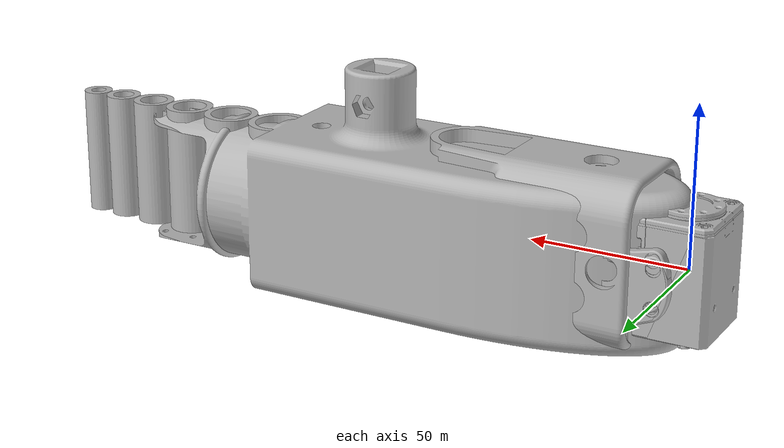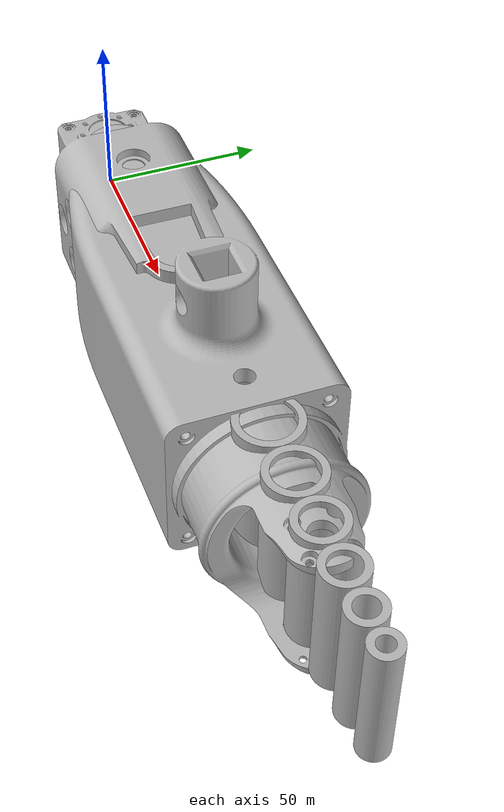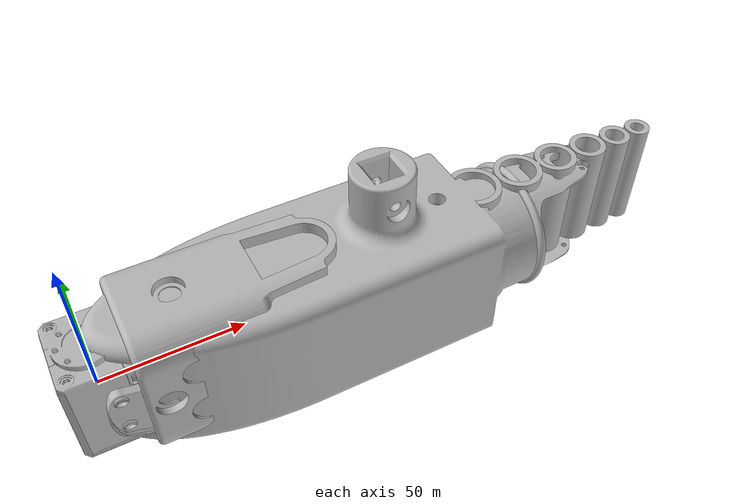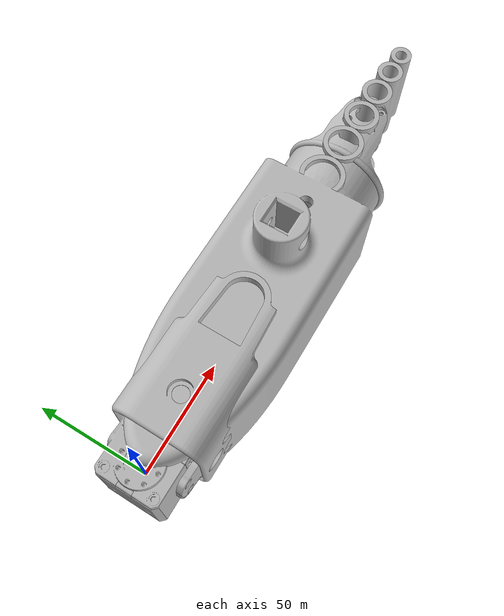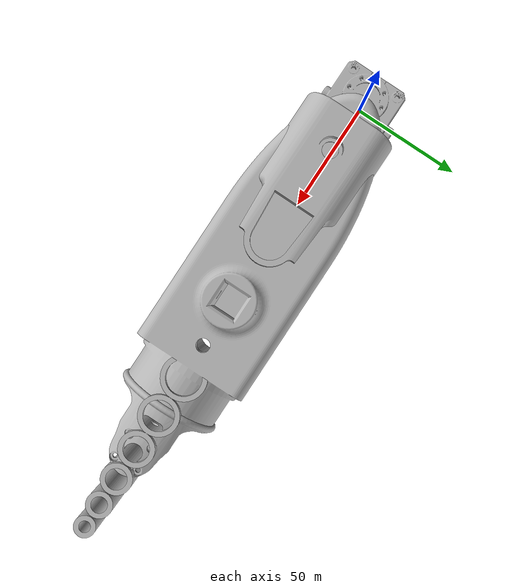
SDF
<?xml version="1.0" ?>
<sdf version="1.6">
	<world name="world">
		<model name="1guilla">
			<pose>0.0 0.0 0.0 0.0 0.0 0.0</pose>
			<link name="link0">
				<pose>0 0 0 0 0 0</pose>
				<inertial>
					<pose>0.0895944 0.000191419 0.00284499 0 0 0</pose>
					<mass>0.0980593</mass>
					<density>800.0</density>
					<inertia>
						<ixx>6.14036e-05</ixx>
						<ixy>9.24119e-08</ixy>
						<ixz>1.37203e-06</ixz>
						<iyy>0.000234707</iyy>
						<iyz>2.08172e-08</iyz>
						<izz>0.000227299</izz>
					</inertia>
				</inertial>
				<collision name="link0_collision">
					<pose>0.0 0.0 0.0 0.0 0.0 0.0</pose>
					<geometry>
						<mesh>
							<uri>meshes/link0_collision.stl</uri>
							<scale>1.0 1.0 1.0</scale>
						</mesh>
					</geometry>
				</collision>
				<visual name="link0_visual">
					<pose>0.0 0.0 0.0 0.0 0.0 0.0</pose>
					<geometry>
						<mesh>
							<uri>meshes/link0.obj</uri>
							<scale>1.0 1.0 1.0</scale>
						</mesh>
					</geometry>
				</visual>
			</link>
			<link name="link1">
				<pose>0.17701 0 0 0 0 0</pose>
				<inertial>
					<pose>0.0162396 0.000150087 -0.000959669 0 0 0</pose>
					<mass>0.0481571</mass>
					<density>800.0</density>
					<inertia>
						<ixx>1.07482e-05</ixx>
						<ixy>8.49192e-09</ixy>
						<ixz>-5.7129e-08</ixz>
						<iyy>1.86555e-05</iyy>
						<iyz>6.58877e-09</iyz>
						<izz>1.57938e-05</izz>
					</inertia>
				</inertial>
				<collision name="link1_collision">
					<pose>0.0 0.0 0.0 0.0 0.0 0.0</pose>
					<geometry>
						<mesh>
							<uri>meshes/link1_collision.stl</uri>
							<scale>1.0 1.0 1.0</scale>
						</mesh>
					</geometry>
				</collision>
				<visual name="link1_visual">
					<pose>0.0 0.0 0.0 0.0 0.0 0.0</pose>
					<geometry>
						<mesh>
							<uri>meshes/link1.obj</uri>
							<scale>1.0 1.0 1.0</scale>
						</mesh>
					</geometry>
				</visual>
			</link>
			<link name="link2">
				<pose>0.23711 0 0 0 0 0</pose>
				<inertial>
					<pose>0.0163229 0.000134716 -0.00105284 0 0 0</pose>
					<mass>0.0481565</mass>
					<density>800.0</density>
					<inertia>
						<ixx>1.07489e-05</ixx>
						<ixy>-1.83964e-08</ixy>
						<ixz>-9.17884e-08</ixz>
						<iyy>1.8655e-05</iyy>
						<iyz>2.18496e-09</iyz>
						<izz>1.57925e-05</izz>
					</inertia>
				</inertial>
				<collision name="link2_collision">
					<pose>0.0 0.0 0.0 0.0 0.0 0.0</pose>
					<geometry>
						<mesh>
							<uri>meshes/link2_collision.stl</uri>
							<scale>1.0 1.0 1.0</scale>
						</mesh>
					</geometry>
				</collision>
				<visual name="link2_visual">
					<pose>0.0 0.0 0.0 0.0 0.0 0.0</pose>
					<geometry>
						<mesh>
							<uri>meshes/link2.obj</uri>
							<scale>1.0 1.0 1.0</scale>
						</mesh>
					</geometry>
				</visual>
			</link>
			<link name="link3">
				<pose>0.29711 0 0 0 0 0</pose>
				<inertial>
					<pose>0.0163446 0.000213776 -0.000714929 0 0 0</pose>
					<mass>0.0481565</mass>
					<density>800.0</density>
					<inertia>
						<ixx>1.07489e-05</ixx>
						<ixy>-2.36812e-08</ixy>
						<ixz>-9.18109e-08</ixz>
						<iyy>1.86549e-05</iyy>
						<iyz>2.07637e-09</iyz>
						<izz>1.57925e-05</izz>
					</inertia>
				</inertial>
				<collision name="link3_collision">
					<pose>0.0 0.0 0.0 0.0 0.0 0.0</pose>
					<geometry>
						<mesh>
							<uri>meshes/link3_collision.stl</uri>
							<scale>1.0 1.0 1.0</scale>
						</mesh>
					</geometry>
				</collision>
				<visual name="link3_visual">
					<pose>0.0 0.0 0.0 0.0 0.0 0.0</pose>
					<geometry>
						<mesh>
							<uri>meshes/link3.obj</uri>
							<scale>1.0 1.0 1.0</scale>
						</mesh>
					</geometry>
				</visual>
			</link>
			<link name="link4">
				<pose>0.35701 0 0 0 0 0</pose>
				<inertial>
					<pose>0.0163461 0.000173785 -0.000345782 0 0 0</pose>
					<mass>0.0481797</mass>
					<density>800.0</density>
					<inertia>
						<ixx>1.07559e-05</ixx>
						<ixy>1.76406e-08</ixy>
						<ixz>-9.19139e-08</ixz>
						<iyy>1.86695e-05</iyy>
						<iyz>2.57109e-09</iyz>
						<izz>1.58076e-05</izz>
					</inertia>
				</inertial>
				<collision name="link4_collision">
					<pose>0.0 0.0 0.0 0.0 0.0 0.0</pose>
					<geometry>
						<mesh>
							<uri>meshes/link4_collision.stl</uri>
							<scale>1.0 1.0 1.0</scale>
						</mesh>
					</geometry>
				</collision>
				<visual name="link4_visual">
					<pose>0.0 0.0 0.0 0.0 0.0 0.0</pose>
					<geometry>
						<mesh>
							<uri>meshes/link4.obj</uri>
							<scale>1.0 1.0 1.0</scale>
						</mesh>
					</geometry>
				</visual>
			</link>
			<link name="link5">
				<pose>0.41691 0 0 0 0 0</pose>
				<inertial>
					<pose>0.0163837 3.92937e-05 3.78491e-05 0 0 0</pose>
					<mass>0.0481478</mass>
					<density>800.0</density>
					<inertia>
						<ixx>1.07455e-05</ixx>
						<ixy>-6.20632e-09</ixy>
						<ixz>-9.18561e-08</ixz>
						<iyy>1.86516e-05</iyy>
						<iyz>2.3745e-09</iyz>
						<izz>1.57882e-05</izz>
					</inertia>
				</inertial>
				<collision name="link5_collision">
					<pose>0.0 0.0 0.0 0.0 0.0 0.0</pose>
					<geometry>
						<mesh>
							<uri>meshes/link5_collision.stl</uri>
							<scale>1.0 1.0 1.0</scale>
						</mesh>
					</geometry>
				</collision>
				<visual name="link5_visual">
					<pose>0.0 0.0 0.0 0.0 0.0 0.0</pose>
					<geometry>
						<mesh>
							<uri>meshes/link5.obj</uri>
							<scale>1.0 1.0 1.0</scale>
						</mesh>
					</geometry>
				</visual>
			</link>
			<link name="link6">
				<pose>0.47711 0 0 0 0 0</pose>
				<inertial>
					<pose>0.0161484 -1.31853e-05 0.000373081 0 0 0</pose>
					<mass>0.0481507</mass>
					<density>800.0</density>
					<inertia>
						<ixx>1.07467e-05</ixx>
						<ixy>-2.67393e-08</ixy>
						<ixz>-9.18817e-08</ixz>
						<iyy>1.86526e-05</iyy>
						<iyz>2.17235e-09</iyz>
						<izz>1.57896e-05</izz>
					</inertia>
				</inertial>
				<collision name="link6_collision">
					<pose>0.0 0.0 0.0 0.0 0.0 0.0</pose>
					<geometry>
						<mesh>
							<uri>meshes/link6_collision.stl</uri>
							<scale>1.0 1.0 1.0</scale>
						</mesh>
					</geometry>
				</collision>
				<visual name="link6_visual">
					<pose>0.0 0.0 0.0 0.0 0.0 0.0</pose>
					<geometry>
						<mesh>
							<uri>meshes/link6.obj</uri>
							<scale>1.0 1.0 1.0</scale>
						</mesh>
					</geometry>
				</visual>
			</link>
			<link name="link7">
				<pose>0.53711 0 0 0 0 0</pose>
				<inertial>
					<pose>0.0161534 7.84285e-05 0.000820784 0 0 0</pose>
					<mass>0.0481566</mass>
					<density>800.0</density>
					<inertia>
						<ixx>1.07486e-05</ixx>
						<ixy>1.24607e-08</ixy>
						<ixz>-9.16576e-08</ixz>
						<iyy>1.86546e-05</iyy>
						<iyz>2.44031e-09</iyz>
						<izz>1.57919e-05</izz>
					</inertia>
				</inertial>
				<collision name="link7_collision">
					<pose>0.0 0.0 0.0 0.0 0.0 0.0</pose>
					<geometry>
						<mesh>
							<uri>meshes/link7_collision.stl</uri>
							<scale>1.0 1.0 1.0</scale>
						</mesh>
					</geometry>
				</collision>
				<visual name="link7_visual">
					<pose>0.0 0.0 0.0 0.0 0.0 0.0</pose>
					<geometry>
						<mesh>
							<uri>meshes/link7.obj</uri>
							<scale>1.0 1.0 1.0</scale>
						</mesh>
					</geometry>
				</visual>
			</link>
			<link name="link8">
				<pose>0.59691 0 0 0 0 0</pose>
				<inertial>
					<pose>0.059301 8.90973e-05 0.00203187 0 0 0</pose>
					<mass>0.103066</mass>
					<density>800.0</density>
					<inertia>
						<ixx>2.86348e-05</ixx>
						<ixy>-1.94034e-06</ixy>
						<ixz>-1.36687e-06</ixz>
						<iyy>0.000383809</iyy>
						<iyz>8.95353e-09</iyz>
						<izz>0.000375497</izz>
					</inertia>
				</inertial>
				<collision name="link8_collision">
					<pose>0.0 0.0 0.0 0.0 0.0 0.0</pose>
					<geometry>
						<mesh>
							<uri>meshes/link8_collision.stl</uri>
							<scale>1.0 1.0 1.0</scale>
						</mesh>
					</geometry>
				</collision>
				<visual name="link8_visual">
					<pose>0.0 0.0 0.0 0.0 0.0 0.0</pose>
					<geometry>
						<mesh>
							<uri>meshes/link8.obj</uri>
							<scale>1.0 1.0 1.0</scale>
						</mesh>
					</geometry>
				</visual>
			</link>
			<joint name="joint_body_00" type="revolute">
				<parent>link0</parent>
				<child>link1</child>
				<pose>0 0 0 0 0 0</pose>
				<axis>
					<xyz>0.0 0.0 -1.0</xyz>
					<limit>
						<lower>-1.5708</lower>
						<upper>1.5708</upper>
					</limit>
				</axis>
			</joint>
			<joint name="joint_body_01" type="revolute">
				<parent>link1</parent>
				<child>link2</child>
				<pose>0 0 0 0 0 0</pose>
				<axis>
					<xyz>0.0 0.0 -1.0</xyz>
					<limit>
						<lower>-1.5708</lower>
						<upper>1.5708</upper>
					</limit>
				</axis>
			</joint>
			<joint name="joint_body_02" type="revolute">
				<parent>link2</parent>
				<child>link3</child>
				<pose>0 0 0 0 0 0</pose>
				<axis>
					<xyz>0.0 0.0 -1.0</xyz>
					<limit>
						<lower>-1.5708</lower>
						<upper>1.5708</upper>
					</limit>
				</axis>
			</joint>
			<joint name="joint_body_03" type="revolute">
				<parent>link3</parent>
				<child>link4</child>
				<pose>0 0 0 0 0 0</pose>
				<axis>
					<xyz>0.0 0.0 -1.0</xyz>
					<limit>
						<lower>-1.5708</lower>
						<upper>1.5708</upper>
					</limit>
				</axis>
			</joint>
			<joint name="joint_body_04" type="revolute">
				<parent>link4</parent>
				<child>link5</child>
				<pose>0 0 0 0 0 0</pose>
				<axis>
					<xyz>0.0 0.0 -1.0</xyz>
					<limit>
						<lower>-1.5708</lower>
						<upper>1.5708</upper>
					</limit>
				</axis>
			</joint>
			<joint name="joint_body_05" type="revolute">
				<parent>link5</parent>
				<child>link6</child>
				<pose>0 0 0 0 0 0</pose>
				<axis>
					<xyz>0.0 0.0 -1.0</xyz>
					<limit>
						<lower>-1.5708</lower>
						<upper>1.5708</upper>
					</limit>
				</axis>
			</joint>
			<joint name="joint_body_06" type="revolute">
				<parent>link6</parent>
				<child>link7</child>
				<pose>0 0 0 0 0 0</pose>
				<axis>
					<xyz>0.0 0.0 -1.0</xyz>
					<limit>
						<lower>-1.5708</lower>
						<upper>1.5708</upper>
					</limit>
				</axis>
			</joint>
			<joint name="joint_body_07" type="revolute">
				<parent>link7</parent>
				<child>link8</child>
				<pose>0 0 0 0 0 0</pose>
				<axis>
					<xyz>0.0 0.0 -1.0</xyz>
					<limit>
						<lower>-1.5708</lower>
						<upper>1.5708</upper>
					</limit>
				</axis>
			</joint>
			<linkend name="link8">
				<pose>0.8133 0 0</pose>
			</linkend>
		</model>
	</world>
</sdf>
